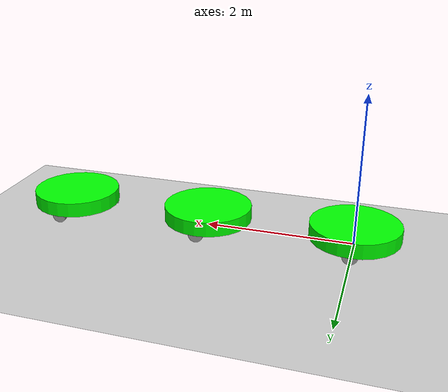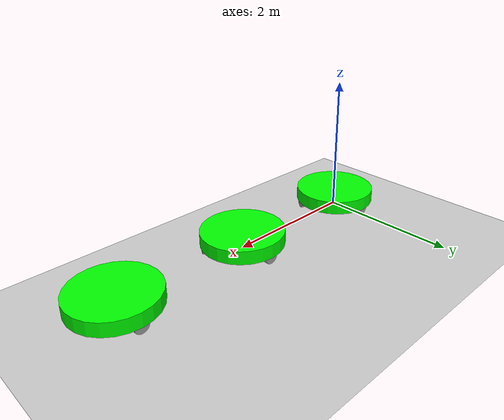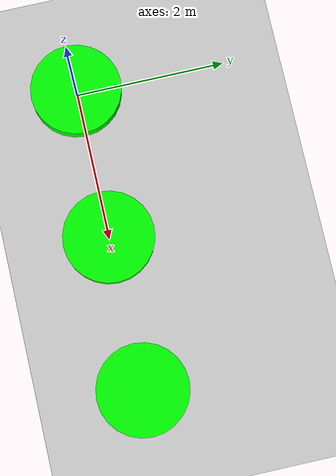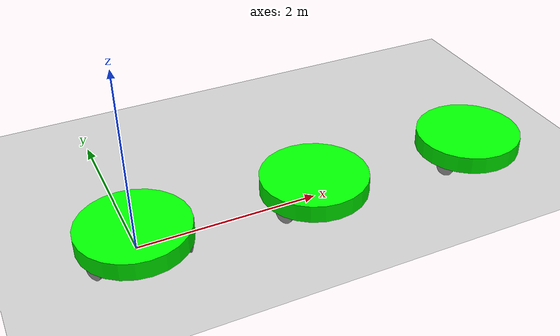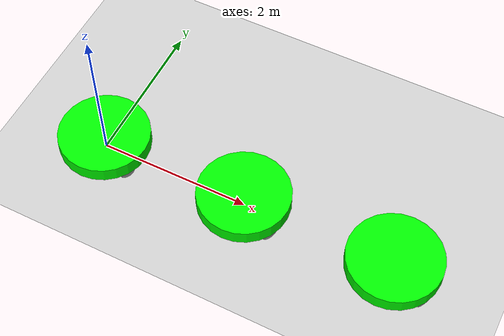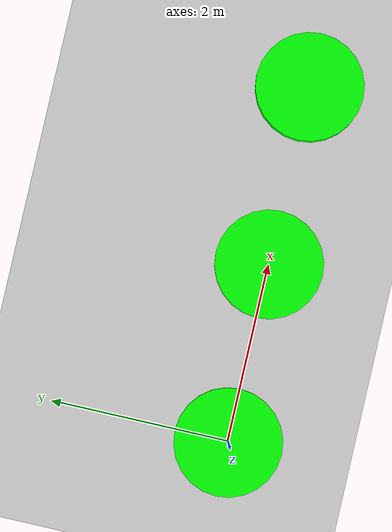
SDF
<sdf version='1.10'>
  <world name='empty'>
    <physics name='1ms' type='ignored'>
      <max_step_size>0.001</max_step_size>
      <real_time_factor>1</real_time_factor>
      <real_time_update_rate>1000</real_time_update_rate>
    </physics>
    <plugin name='gz::sim::systems::Physics' filename='gz-sim-physics-system'/>
    <plugin name='gz::sim::systems::UserCommands' filename='gz-sim-user-commands-system'/>
    <plugin name='gz::sim::systems::SceneBroadcaster' filename='gz-sim-scene-broadcaster-system'/>
    <plugin name='gz::sim::systems::Contact' filename='gz-sim-contact-system'/>
    <plugin name='gz::sim::systems::Sensors' filename='gz-sim-sensors-system'>
      <render_engine>ogre2</render_engine>
    </plugin>
    <gravity>0 0 -9.8000000000000007</gravity>
    <magnetic_field>5.5644999999999998e-06 2.2875799999999999e-05 -4.2388400000000002e-05</magnetic_field>
    <atmosphere type='adiabatic'/>
    <scene>
      <ambient>0.400000006 0.400000006 0.400000006 1</ambient>
      <background>0.699999988 0.699999988 0.699999988 1</background>
      <shadows>true</shadows>
    </scene>
    <model name='ground_plane'>
      <static>true</static>
      <link name='link'>
        <collision name='collision'>
          <geometry>
            <plane>
              <normal>0 0 1</normal>
              <size>100 100</size>
            </plane>
          </geometry>
          <surface>
            <friction>
              <ode/>
            </friction>
            <bounce/>
            <contact/>
          </surface>
        </collision>
        <visual name='visual'>
          <geometry>
            <plane>
              <normal>0 0 1</normal>
              <size>100 100</size>
            </plane>
          </geometry>
          <material>
            <ambient>0.800000012 0.800000012 0.800000012 1</ambient>
            <diffuse>0.800000012 0.800000012 0.800000012 1</diffuse>
            <specular>0.800000012 0.800000012 0.800000012 1</specular>
          </material>
        </visual>
        <pose>0 0 0 0 0 0</pose>
        <inertial>
          <pose>0 0 0 0 0 0</pose>
          <mass>1</mass>
          <inertia>
            <ixx>1</ixx>
            <ixy>0</ixy>
            <ixz>0</ixz>
            <iyy>1</iyy>
            <iyz>0</iyz>
            <izz>1</izz>
          </inertia>
        </inertial>
        <enable_wind>false</enable_wind>
      </link>
      <pose>0 0 0 0 0 0</pose>
      <self_collide>false</self_collide>
    </model>
    <model name='robot3'>
      <link name='base_footprint'>
        <inertial>
          <pose>0 0 0.10000000000000001 0 0 0</pose>
          <mass>1</mass>
          <inertia>
            <ixx>0.093333333333333324</ixx>
            <ixy>0</ixy>
            <ixz>0</ixz>
            <iyy>0.093333333333333324</iyy>
            <iyz>0</iyz>
            <izz>0.17999999999999999</izz>
          </inertia>
        </inertial>
        <collision name='base_footprint_fixed_joint_lump__base_link_collision'>
          <pose>0 0 0.10000000000000001 0 0 0</pose>
          <geometry>
            <cylinder>
              <length>0.20000000000000001</length>
              <radius>0.59999999999999998</radius>
            </cylinder>
          </geometry>
          <surface>
            <friction>
              <ode/>
            </friction>
            <bounce/>
            <contact/>
          </surface>
        </collision>
        <visual name='base_footprint_fixed_joint_lump__base_link_visual'>
          <pose>0 0 0.10000000000000001 0 0 0</pose>
          <geometry>
            <cylinder>
              <length>0.20000000000000001</length>
              <radius>0.59999999999999998</radius>
            </cylinder>
          </geometry>
          <material>
            <diffuse>0 1 0 1</diffuse>
            <ambient>0 1 0 1</ambient>
          </material>
        </visual>
        <pose>0 0 0 0 0 0</pose>
        <enable_wind>false</enable_wind>
      </link>
      <joint name='wheel_front_joint' type='revolute'>
        <pose>0 0 0 0 0 0</pose>
        <parent>base_footprint</parent>
        <child>wheel_front_link</child>
        <axis>
          <xyz>0 1 0</xyz>
          <limit>
            <lower>-inf</lower>
            <upper>inf</upper>
            <effort>inf</effort>
            <velocity>inf</velocity>
            <stiffness>100000000</stiffness>
            <dissipation>1</dissipation>
          </limit>
          <dynamics>
            <spring_reference>0</spring_reference>
            <spring_stiffness>0</spring_stiffness>
            <damping>0</damping>
            <friction>0</friction>
          </dynamics>
        </axis>
      </joint>
      <link name='wheel_front_link'>
        <pose>0 0.55000000000000004 1.3877787807814457e-17 0 1.5244579378465031e-15 1.5707963267948959</pose>
        <inertial>
          <pose>0 0 0 0 0 0</pose>
          <mass>0.5</mass>
          <inertia>
            <ixx>0.001</ixx>
            <ixy>0</ixy>
            <ixz>0</ixz>
            <iyy>0.001</iyy>
            <iyz>0</iyz>
            <izz>0.001</izz>
          </inertia>
        </inertial>
        <collision name='wheel_front_link_collision'>
          <pose>0 0 0 0 1.5707963267948966 0</pose>
          <geometry>
            <cylinder>
              <length>0.050000000000000003</length>
              <radius>0.10000000000000001</radius>
            </cylinder>
          </geometry>
          <surface>
            <friction>
              <ode/>
            </friction>
            <bounce/>
            <contact/>
          </surface>
        </collision>
        <visual name='wheel_front_link_visual'>
          <pose>0 0 0 0 1.5707963267948966 0</pose>
          <geometry>
            <cylinder>
              <length>0.050000000000000003</length>
              <radius>0.10000000000000001</radius>
            </cylinder>
          </geometry>
          <material>
            <diffuse>0.625 0.625 0.625 1</diffuse>
            <ambient>0.625 0.625 0.625 1</ambient>
          </material>
        </visual>
        <enable_wind>false</enable_wind>
      </link>
      <joint name='wheel_left_joint' type='revolute'>
        <pose>0 -2.7755575615628914e-17 0 0 0 0</pose>
        <parent>base_footprint</parent>
        <child>wheel_left_link</child>
        <axis>
          <xyz>0 1 0</xyz>
          <limit>
            <lower>-inf</lower>
            <upper>inf</upper>
            <effort>inf</effort>
            <velocity>inf</velocity>
            <stiffness>100000000</stiffness>
            <dissipation>1</dissipation>
          </limit>
          <dynamics>
            <spring_reference>0</spring_reference>
            <spring_stiffness>0</spring_stiffness>
            <damping>0</damping>
            <friction>0</friction>
          </dynamics>
        </axis>
      </joint>
      <link name='wheel_left_link'>
        <pose>-0.47631397208144133 -0.27500000000000013 1.3877787807814457e-17 -2.0029671421627253e-32 -2.6233784772205221e-17 -2.617993877991494</pose>
        <inertial>
          <pose>0 0 0 0 0 0</pose>
          <mass>0.5</mass>
          <inertia>
            <ixx>0.001</ixx>
            <ixy>0</ixy>
            <ixz>0</ixz>
            <iyy>0.001</iyy>
            <iyz>0</iyz>
            <izz>0.001</izz>
          </inertia>
        </inertial>
        <collision name='wheel_left_link_collision'>
          <pose>0 0 0 0 1.5707963267948966 0</pose>
          <geometry>
            <cylinder>
              <length>0.050000000000000003</length>
              <radius>0.10000000000000001</radius>
            </cylinder>
          </geometry>
          <surface>
            <friction>
              <ode/>
            </friction>
            <bounce/>
            <contact/>
          </surface>
        </collision>
        <visual name='wheel_left_link_visual'>
          <pose>0 0 0 0 1.5707963267948966 0</pose>
          <geometry>
            <cylinder>
              <length>0.050000000000000003</length>
              <radius>0.10000000000000001</radius>
            </cylinder>
          </geometry>
          <material>
            <diffuse>0.625 0.625 0.625 1</diffuse>
            <ambient>0.625 0.625 0.625 1</ambient>
          </material>
        </visual>
        <enable_wind>false</enable_wind>
      </link>
      <joint name='wheel_right_joint' type='revolute'>
        <pose>1.1102230246251565e-16 2.7755575615628914e-17 0 0 0 0</pose>
        <parent>base_footprint</parent>
        <child>wheel_right_link</child>
        <axis>
          <xyz>0 1 0</xyz>
          <limit>
            <lower>-inf</lower>
            <upper>inf</upper>
            <effort>inf</effort>
            <velocity>inf</velocity>
            <stiffness>100000000</stiffness>
            <dissipation>1</dissipation>
          </limit>
          <dynamics>
            <spring_reference>0</spring_reference>
            <spring_stiffness>0</spring_stiffness>
            <damping>0</damping>
            <friction>0</friction>
          </dynamics>
        </axis>
      </joint>
      <link name='wheel_right_link'>
        <pose>0.47631397208144133 -0.2750000000000003 1.3877787807814457e-17 0 -4.5265982231774944e-16 -0.52359877559829937</pose>
        <inertial>
          <pose>0 0 0 0 0 0</pose>
          <mass>0.5</mass>
          <inertia>
            <ixx>0.001</ixx>
            <ixy>0</ixy>
            <ixz>0</ixz>
            <iyy>0.001</iyy>
            <iyz>0</iyz>
            <izz>0.001</izz>
          </inertia>
        </inertial>
        <collision name='wheel_right_link_collision'>
          <pose>0 0 0 0 1.5707963267948966 0</pose>
          <geometry>
            <cylinder>
              <length>0.050000000000000003</length>
              <radius>0.10000000000000001</radius>
            </cylinder>
          </geometry>
          <surface>
            <friction>
              <ode/>
            </friction>
            <bounce/>
            <contact/>
          </surface>
        </collision>
        <visual name='wheel_right_link_visual'>
          <pose>0 0 0 0 1.5707963267948966 0</pose>
          <geometry>
            <cylinder>
              <length>0.050000000000000003</length>
              <radius>0.10000000000000001</radius>
            </cylinder>
          </geometry>
          <material>
            <diffuse>0.625 0.625 0.625 1</diffuse>
            <ambient>0.625 0.625 0.625 1</ambient>
          </material>
        </visual>
        <enable_wind>false</enable_wind>
      </link>
      <plugin name='gz::sim::systems::PosePublisher' filename='gz-sim-pose-publisher-system'>
        <update_frequency>10</update_frequency>
        <publish_model_pose>true</publish_model_pose>
        <publish_link_pose>false</publish_link_pose>
        <use_pose_vector_msg>true</use_pose_vector_msg>
      </plugin>
      <frame name='base_joint' attached_to='base_footprint'>
        <pose>0 0 0 0 0 0</pose>
      </frame>
      <frame name='base_link' attached_to='base_joint'>
        <pose>0 0 0 0 0 0</pose>
      </frame>
      <pose>4 6.1437560136031299e-17 0.099999895738787647 1.5556465607258881e-16 1.2213065887778763e-16 -4.4732955363115538e-18</pose>
      <static>false</static>
      <self_collide>false</self_collide>
    </model>
    <model name='robot2'>
      <link name='base_footprint'>
        <inertial>
          <pose>0 0 0.10000000000000001 0 0 0</pose>
          <mass>1</mass>
          <inertia>
            <ixx>0.093333333333333324</ixx>
            <ixy>0</ixy>
            <ixz>0</ixz>
            <iyy>0.093333333333333324</iyy>
            <iyz>0</iyz>
            <izz>0.17999999999999999</izz>
          </inertia>
        </inertial>
        <collision name='base_footprint_fixed_joint_lump__base_link_collision'>
          <pose>0 0 0.10000000000000001 0 0 0</pose>
          <geometry>
            <cylinder>
              <length>0.20000000000000001</length>
              <radius>0.59999999999999998</radius>
            </cylinder>
          </geometry>
          <surface>
            <friction>
              <ode/>
            </friction>
            <bounce/>
            <contact/>
          </surface>
        </collision>
        <visual name='base_footprint_fixed_joint_lump__base_link_visual'>
          <pose>0 0 0.10000000000000001 0 0 0</pose>
          <geometry>
            <cylinder>
              <length>0.20000000000000001</length>
              <radius>0.59999999999999998</radius>
            </cylinder>
          </geometry>
          <material>
            <diffuse>0 1 0 1</diffuse>
            <ambient>0 1 0 1</ambient>
          </material>
        </visual>
        <pose>0 0 0 0 0 0</pose>
        <enable_wind>false</enable_wind>
      </link>
      <joint name='wheel_front_joint' type='revolute'>
        <pose>0 0 0 0 0 0</pose>
        <parent>base_footprint</parent>
        <child>wheel_front_link</child>
        <axis>
          <xyz>0 1 0</xyz>
          <limit>
            <lower>-inf</lower>
            <upper>inf</upper>
            <effort>inf</effort>
            <velocity>inf</velocity>
            <stiffness>100000000</stiffness>
            <dissipation>1</dissipation>
          </limit>
          <dynamics>
            <spring_reference>0</spring_reference>
            <spring_stiffness>0</spring_stiffness>
            <damping>0</damping>
            <friction>0</friction>
          </dynamics>
        </axis>
      </joint>
      <link name='wheel_front_link'>
        <pose>0 0.54999999999999993 1.3877787807814457e-17 0 5.9321098920497913e-16 1.5707963267948959</pose>
        <inertial>
          <pose>0 0 0 0 0 0</pose>
          <mass>0.5</mass>
          <inertia>
            <ixx>0.001</ixx>
            <ixy>0</ixy>
            <ixz>0</ixz>
            <iyy>0.001</iyy>
            <iyz>0</iyz>
            <izz>0.001</izz>
          </inertia>
        </inertial>
        <collision name='wheel_front_link_collision'>
          <pose>0 0 0 0 1.5707963267948966 0</pose>
          <geometry>
            <cylinder>
              <length>0.050000000000000003</length>
              <radius>0.10000000000000001</radius>
            </cylinder>
          </geometry>
          <surface>
            <friction>
              <ode/>
            </friction>
            <bounce/>
            <contact/>
          </surface>
        </collision>
        <visual name='wheel_front_link_visual'>
          <pose>0 0 0 0 1.5707963267948966 0</pose>
          <geometry>
            <cylinder>
              <length>0.050000000000000003</length>
              <radius>0.10000000000000001</radius>
            </cylinder>
          </geometry>
          <material>
            <diffuse>0.625 0.625 0.625 1</diffuse>
            <ambient>0.625 0.625 0.625 1</ambient>
          </material>
        </visual>
        <enable_wind>false</enable_wind>
      </link>
      <joint name='wheel_left_joint' type='revolute'>
        <pose>0 -2.7755575615628914e-17 0 0 0 0</pose>
        <parent>base_footprint</parent>
        <child>wheel_left_link</child>
        <axis>
          <xyz>0 1 0</xyz>
          <limit>
            <lower>-inf</lower>
            <upper>inf</upper>
            <effort>inf</effort>
            <velocity>inf</velocity>
            <stiffness>100000000</stiffness>
            <dissipation>1</dissipation>
          </limit>
          <dynamics>
            <spring_reference>0</spring_reference>
            <spring_stiffness>0</spring_stiffness>
            <damping>0</damping>
            <friction>0</friction>
          </dynamics>
        </axis>
      </joint>
      <link name='wheel_left_link'>
        <pose>-0.47631397208144133 -0.27500000000000013 0 2.4651903288156619e-32 -4.3512167354894154e-16 -2.617993877991494</pose>
        <inertial>
          <pose>0 0 0 0 0 0</pose>
          <mass>0.5</mass>
          <inertia>
            <ixx>0.001</ixx>
            <ixy>0</ixy>
            <ixz>0</ixz>
            <iyy>0.001</iyy>
            <iyz>0</iyz>
            <izz>0.001</izz>
          </inertia>
        </inertial>
        <collision name='wheel_left_link_collision'>
          <pose>0 0 0 0 1.5707963267948966 0</pose>
          <geometry>
            <cylinder>
              <length>0.050000000000000003</length>
              <radius>0.10000000000000001</radius>
            </cylinder>
          </geometry>
          <surface>
            <friction>
              <ode/>
            </friction>
            <bounce/>
            <contact/>
          </surface>
        </collision>
        <visual name='wheel_left_link_visual'>
          <pose>0 0 0 0 1.5707963267948966 0</pose>
          <geometry>
            <cylinder>
              <length>0.050000000000000003</length>
              <radius>0.10000000000000001</radius>
            </cylinder>
          </geometry>
          <material>
            <diffuse>0.625 0.625 0.625 1</diffuse>
            <ambient>0.625 0.625 0.625 1</ambient>
          </material>
        </visual>
        <enable_wind>false</enable_wind>
      </link>
      <joint name='wheel_right_joint' type='revolute'>
        <pose>1.1102230246251565e-16 2.7755575615628914e-17 0 0 0 0</pose>
        <parent>base_footprint</parent>
        <child>wheel_right_link</child>
        <axis>
          <xyz>0 1 0</xyz>
          <limit>
            <lower>-inf</lower>
            <upper>inf</upper>
            <effort>inf</effort>
            <velocity>inf</velocity>
            <stiffness>100000000</stiffness>
            <dissipation>1</dissipation>
          </limit>
          <dynamics>
            <spring_reference>0</spring_reference>
            <spring_stiffness>0</spring_stiffness>
            <damping>0</damping>
            <friction>0</friction>
          </dynamics>
        </axis>
      </joint>
      <link name='wheel_right_link'>
        <pose>0.47631397208144133 -0.27500000000000002 0 4.3140830754274083e-32 -1.6222935891560731e-16 -0.52359877559829937</pose>
        <inertial>
          <pose>0 0 0 0 0 0</pose>
          <mass>0.5</mass>
          <inertia>
            <ixx>0.001</ixx>
            <ixy>0</ixy>
            <ixz>0</ixz>
            <iyy>0.001</iyy>
            <iyz>0</iyz>
            <izz>0.001</izz>
          </inertia>
        </inertial>
        <collision name='wheel_right_link_collision'>
          <pose>0 0 0 0 1.5707963267948966 0</pose>
          <geometry>
            <cylinder>
              <length>0.050000000000000003</length>
              <radius>0.10000000000000001</radius>
            </cylinder>
          </geometry>
          <surface>
            <friction>
              <ode/>
            </friction>
            <bounce/>
            <contact/>
          </surface>
        </collision>
        <visual name='wheel_right_link_visual'>
          <pose>0 0 0 0 1.5707963267948966 0</pose>
          <geometry>
            <cylinder>
              <length>0.050000000000000003</length>
              <radius>0.10000000000000001</radius>
            </cylinder>
          </geometry>
          <material>
            <diffuse>0.625 0.625 0.625 1</diffuse>
            <ambient>0.625 0.625 0.625 1</ambient>
          </material>
        </visual>
        <enable_wind>false</enable_wind>
      </link>
      <plugin name='gz::sim::systems::PosePublisher' filename='gz-sim-pose-publisher-system'>
        <update_frequency>10</update_frequency>
        <publish_model_pose>true</publish_model_pose>
        <publish_link_pose>false</publish_link_pose>
        <use_pose_vector_msg>true</use_pose_vector_msg>
      </plugin>
      <frame name='base_joint' attached_to='base_footprint'>
        <pose>0 0 0 0 0 0</pose>
      </frame>
      <frame name='base_link' attached_to='base_joint'>
        <pose>0 0 0 0 0 0</pose>
      </frame>
      <pose>2 4.1601021363559795e-17 0.099999895738787634 2.7315624720185862e-16 -1.5134524313517485e-16 -2.8423757208361146e-17</pose>
      <static>false</static>
      <self_collide>false</self_collide>
    </model>
    <model name='robot1'>
      <link name='base_footprint'>
        <inertial>
          <pose>0 0 0.10000000000000001 0 0 0</pose>
          <mass>1</mass>
          <inertia>
            <ixx>0.093333333333333324</ixx>
            <ixy>0</ixy>
            <ixz>0</ixz>
            <iyy>0.093333333333333324</iyy>
            <iyz>0</iyz>
            <izz>0.17999999999999999</izz>
          </inertia>
        </inertial>
        <collision name='base_footprint_fixed_joint_lump__base_link_collision'>
          <pose>0 0 0.10000000000000001 0 0 0</pose>
          <geometry>
            <cylinder>
              <length>0.20000000000000001</length>
              <radius>0.59999999999999998</radius>
            </cylinder>
          </geometry>
          <surface>
            <friction>
              <ode/>
            </friction>
            <bounce/>
            <contact/>
          </surface>
        </collision>
        <visual name='base_footprint_fixed_joint_lump__base_link_visual'>
          <pose>0 0 0.10000000000000001 0 0 0</pose>
          <geometry>
            <cylinder>
              <length>0.20000000000000001</length>
              <radius>0.59999999999999998</radius>
            </cylinder>
          </geometry>
          <material>
            <diffuse>0 1 0 1</diffuse>
            <ambient>0 1 0 1</ambient>
          </material>
        </visual>
        <pose>0 0 0 0 0 0</pose>
        <enable_wind>false</enable_wind>
      </link>
      <joint name='wheel_front_joint' type='revolute'>
        <pose>0 0 0 0 0 0</pose>
        <parent>base_footprint</parent>
        <child>wheel_front_link</child>
        <axis>
          <xyz>0 1 0</xyz>
          <limit>
            <lower>-inf</lower>
            <upper>inf</upper>
            <effort>inf</effort>
            <velocity>inf</velocity>
            <stiffness>100000000</stiffness>
            <dissipation>1</dissipation>
          </limit>
          <dynamics>
            <spring_reference>0</spring_reference>
            <spring_stiffness>0</spring_stiffness>
            <damping>0</damping>
            <friction>0</friction>
          </dynamics>
        </axis>
      </joint>
      <link name='wheel_front_link'>
        <pose>3.3677786976552219e-17 0.55000000000000004 -1.3877787807814457e-17 -4.9303806576313238e-32 6.3025492027763865e-16 1.5707963267948959</pose>
        <inertial>
          <pose>0 0 0 0 0 0</pose>
          <mass>0.5</mass>
          <inertia>
            <ixx>0.001</ixx>
            <ixy>0</ixy>
            <ixz>0</ixz>
            <iyy>0.001</iyy>
            <iyz>0</iyz>
            <izz>0.001</izz>
          </inertia>
        </inertial>
        <collision name='wheel_front_link_collision'>
          <pose>0 0 0 0 1.5707963267948966 0</pose>
          <geometry>
            <cylinder>
              <length>0.050000000000000003</length>
              <radius>0.10000000000000001</radius>
            </cylinder>
          </geometry>
          <surface>
            <friction>
              <ode/>
            </friction>
            <bounce/>
            <contact/>
          </surface>
        </collision>
        <visual name='wheel_front_link_visual'>
          <pose>0 0 0 0 1.5707963267948966 0</pose>
          <geometry>
            <cylinder>
              <length>0.050000000000000003</length>
              <radius>0.10000000000000001</radius>
            </cylinder>
          </geometry>
          <material>
            <diffuse>0.625 0.625 0.625 1</diffuse>
            <ambient>0.625 0.625 0.625 1</ambient>
          </material>
        </visual>
        <enable_wind>false</enable_wind>
      </link>
      <joint name='wheel_left_joint' type='revolute'>
        <pose>0 -2.7755575615628914e-17 0 0 0 0</pose>
        <parent>base_footprint</parent>
        <child>wheel_left_link</child>
        <axis>
          <xyz>0 1 0</xyz>
          <limit>
            <lower>-inf</lower>
            <upper>inf</upper>
            <effort>inf</effort>
            <velocity>inf</velocity>
            <stiffness>100000000</stiffness>
            <dissipation>1</dissipation>
          </limit>
          <dynamics>
            <spring_reference>0</spring_reference>
            <spring_stiffness>0</spring_stiffness>
            <damping>0</damping>
            <friction>0</friction>
          </dynamics>
        </axis>
      </joint>
      <link name='wheel_left_link'>
        <pose>-0.47631397208144127 -0.27500000000000008 0 -9.8607613152626476e-32 -9.4320501955985773e-16 -2.617993877991494</pose>
        <inertial>
          <pose>0 0 0 0 0 0</pose>
          <mass>0.5</mass>
          <inertia>
            <ixx>0.001</ixx>
            <ixy>0</ixy>
            <ixz>0</ixz>
            <iyy>0.001</iyy>
            <iyz>0</iyz>
            <izz>0.001</izz>
          </inertia>
        </inertial>
        <collision name='wheel_left_link_collision'>
          <pose>0 0 0 0 1.5707963267948966 0</pose>
          <geometry>
            <cylinder>
              <length>0.050000000000000003</length>
              <radius>0.10000000000000001</radius>
            </cylinder>
          </geometry>
          <surface>
            <friction>
              <ode/>
            </friction>
            <bounce/>
            <contact/>
          </surface>
        </collision>
        <visual name='wheel_left_link_visual'>
          <pose>0 0 0 0 1.5707963267948966 0</pose>
          <geometry>
            <cylinder>
              <length>0.050000000000000003</length>
              <radius>0.10000000000000001</radius>
            </cylinder>
          </geometry>
          <material>
            <diffuse>0.625 0.625 0.625 1</diffuse>
            <ambient>0.625 0.625 0.625 1</ambient>
          </material>
        </visual>
        <enable_wind>false</enable_wind>
      </link>
      <joint name='wheel_right_joint' type='revolute'>
        <pose>1.1102230246251565e-16 2.7755575615628914e-17 0 0 0 0</pose>
        <parent>base_footprint</parent>
        <child>wheel_right_link</child>
        <axis>
          <xyz>0 1 0</xyz>
          <limit>
            <lower>-inf</lower>
            <upper>inf</upper>
            <effort>inf</effort>
            <velocity>inf</velocity>
            <stiffness>100000000</stiffness>
            <dissipation>1</dissipation>
          </limit>
          <dynamics>
            <spring_reference>0</spring_reference>
            <spring_stiffness>0</spring_stiffness>
            <damping>0</damping>
            <friction>0</friction>
          </dynamics>
        </axis>
      </joint>
      <link name='wheel_right_link'>
        <pose>0.47631397208144122 -0.2750000000000003 -1.3877787807814457e-17 1.9259299443872359e-32 -1.658749687298532e-17 -0.52359877559829926</pose>
        <inertial>
          <pose>0 0 0 0 0 0</pose>
          <mass>0.5</mass>
          <inertia>
            <ixx>0.001</ixx>
            <ixy>0</ixy>
            <ixz>0</ixz>
            <iyy>0.001</iyy>
            <iyz>0</iyz>
            <izz>0.001</izz>
          </inertia>
        </inertial>
        <collision name='wheel_right_link_collision'>
          <pose>0 0 0 0 1.5707963267948966 0</pose>
          <geometry>
            <cylinder>
              <length>0.050000000000000003</length>
              <radius>0.10000000000000001</radius>
            </cylinder>
          </geometry>
          <surface>
            <friction>
              <ode/>
            </friction>
            <bounce/>
            <contact/>
          </surface>
        </collision>
        <visual name='wheel_right_link_visual'>
          <pose>0 0 0 0 1.5707963267948966 0</pose>
          <geometry>
            <cylinder>
              <length>0.050000000000000003</length>
              <radius>0.10000000000000001</radius>
            </cylinder>
          </geometry>
          <material>
            <diffuse>0.625 0.625 0.625 1</diffuse>
            <ambient>0.625 0.625 0.625 1</ambient>
          </material>
        </visual>
        <enable_wind>false</enable_wind>
      </link>
      <plugin name='gz::sim::systems::PosePublisher' filename='gz-sim-pose-publisher-system'>
        <update_frequency>10</update_frequency>
        <publish_model_pose>true</publish_model_pose>
        <publish_link_pose>false</publish_link_pose>
        <use_pose_vector_msg>true</use_pose_vector_msg>
      </plugin>
      <frame name='base_joint' attached_to='base_footprint'>
        <pose>0 0 0 0 0 0</pose>
      </frame>
      <frame name='base_link' attached_to='base_joint'>
        <pose>0 0 0 0 0 0</pose>
      </frame>
      <pose>-5.7702503273477178e-18 1.8276019308852019e-17 0.099999895738787634 2.3135000957562616e-16 -5.3400512515644643e-17 -6.113670521710789e-17</pose>
      <static>false</static>
      <self_collide>false</self_collide>
    </model>
    <light name='sun' type='directional'>
      <pose>0 0 10 0 0 0</pose>
      <cast_shadows>true</cast_shadows>
      <intensity>1</intensity>
      <direction>-0.5 0.10000000000000001 -0.90000000000000002</direction>
      <diffuse>0.800000012 0.800000012 0.800000012 1</diffuse>
      <specular>0.200000003 0.200000003 0.200000003 1</specular>
      <attenuation>
        <range>1000</range>
        <linear>0.01</linear>
        <constant>0.90000000000000002</constant>
        <quadratic>0.001</quadratic>
      </attenuation>
      <spot>
        <inner_angle>0</inner_angle>
        <outer_angle>0</outer_angle>
        <falloff>0</falloff>
      </spot>
    </light>
  </world>
</sdf>
